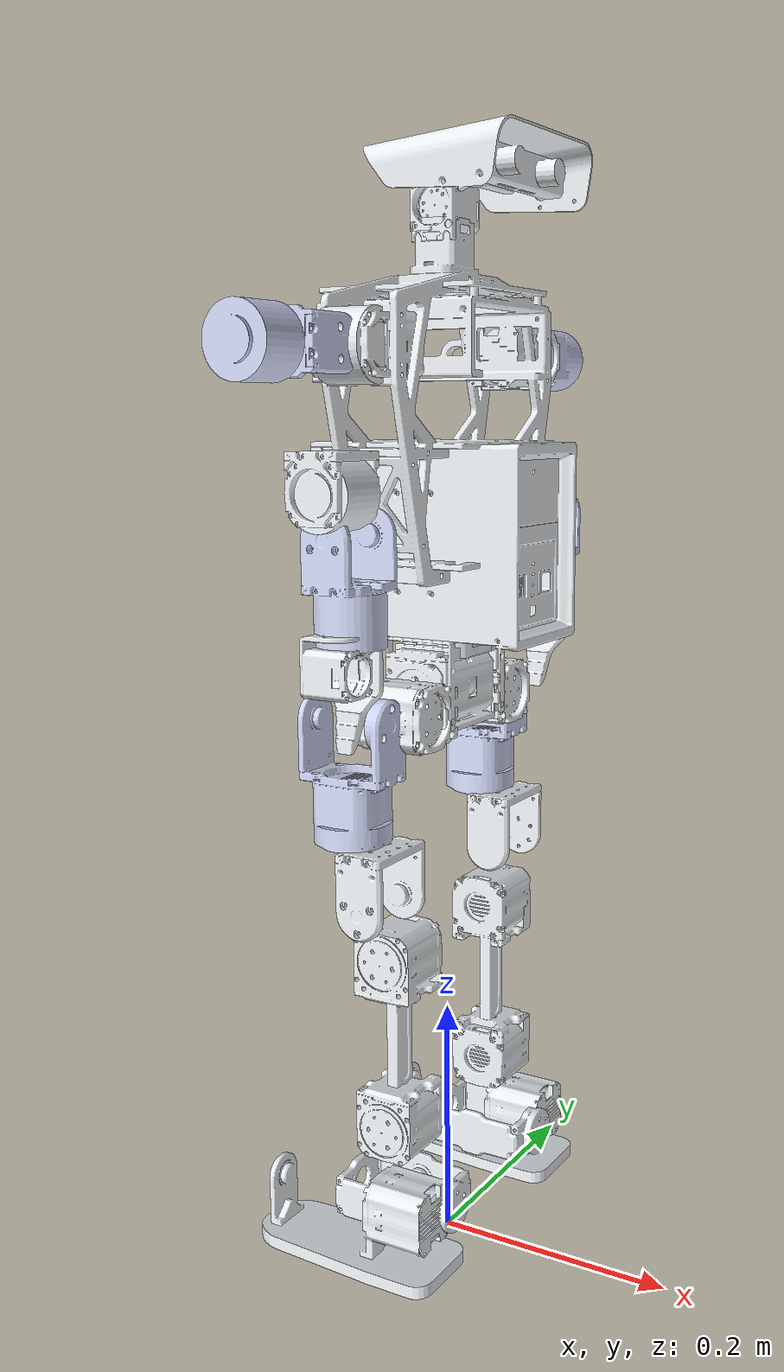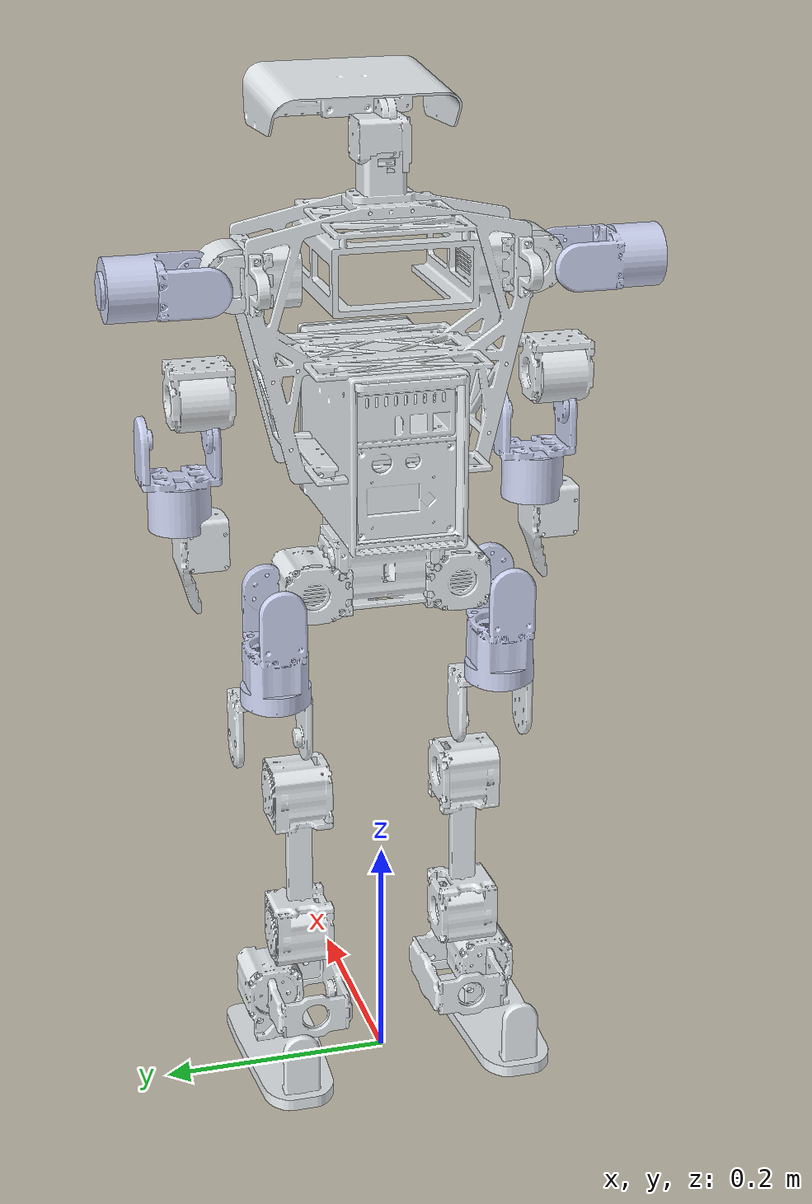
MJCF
<mujoco model="hi_25dof">
  <compiler angle="radian" meshdir="../meshes/"/>

   <statistic center="0 0 0.1" extent="0.8"/>

  <default>
    <joint damping="0.001" armature="0.01" frictionloss="0.1"/>
      <default class="collision">
       <geom group="3"/>
      </default>
  </default>

  <asset>
    <mesh name="base_link" file="base_link.STL"/>
    <mesh name="l_hip_pitch_link" file="l_hip_pitch_link.STL"/>
    <mesh name="l_hip_roll_link" file="l_hip_roll_link.STL"/>
    <mesh name="l_hip_thigh_link" file="l_hip_thigh_link.STL"/>
    <mesh name="l_hip_calf_link" file="l_hip_calf_link.STL"/>
    <mesh name="l_ankle_pitch_link" file="l_ankle_pitch_link.STL"/>
    <mesh name="l_ankle_roll_link" file="l_ankle_roll_link.STL"/>
    <mesh name="ankle_roll_simplify" file="ankle_roll_simplify.STL" scale="0.001 0.001 0.001"/>
    <mesh name="r_hip_pitch_link" file="r_hip_pitch_link.STL"/>
    <mesh name="r_hip_roll_link" file="r_hip_roll_link.STL"/>
    <mesh name="r_hip_thigh_link" file="r_hip_thigh_link.STL"/>
    <mesh name="r_hip_calf_link" file="r_hip_calf_link.STL"/>
    <mesh name="r_ankle_pitch_link" file="r_ankle_pitch_link.STL"/>
    <mesh name="r_ankle_roll_link" file="r_ankle_roll_link.STL"/>
    <mesh name="waist_yaw_link" file="waist_yaw_link.STL"/>
    <mesh name="l_shoulder_pitch_link" file="l_shoulder_pitch_link.STL"/>
    <mesh name="l_shoulder_roll_link" file="l_shoulder_roll_link.STL"/>
    <mesh name="l_upper_arm_link" file="l_upper_arm_link.STL"/>
    <mesh name="l_elbow_link" file="l_elbow_link.STL"/>
    <mesh name="l_wrist_link" file="l_wrist_link.STL"/>
    <mesh name="r_shoulder_pitch_link" file="r_shoulder_pitch_link.STL"/>
    <mesh name="r_shoulder_roll_link" file="r_shoulder_roll_link.STL"/>
    <mesh name="r_upper_arm_link" file="r_upper_arm_link.STL"/>
    <mesh name="r_elbow_link" file="r_elbow_link.STL"/>
    <mesh name="r_wrist_link" file="r_wrist_link.STL"/>
    <mesh name="head_yaw_link" file="head_yaw_link.STL"/>
    <mesh name="head_pitch_link" file="head_pitch_link.STL"/>

  </asset>

 <worldbody>
    <body name="base_link" pos="0 0 0.5">
      <site name="imu" size="0.01" pos="-0.0 -0.0 0.0" />
      <inertial pos="0 0 -0.0394294" quat="0.707104 0.707104 -0.00191349 -0.00191349" mass="1.42581" diaginertia="0.00205355 0.0018257 0.000501455"/>
      <joint name="floating_base_joint" type="free" limited="false" actuatorfrclimited="false"/>
      <geom type="mesh" contype="0" conaffinity="0" group="1" density="0" rgba="0.89804 0.91765 0.92941 1" mesh="base_link"/>
      <geom size="0.025 0.05 0.0325" pos="0 0 -0.04" type="box" rgba="0.89804 0.91765 0.92941 1" class="collision"/>
      <body name="l_hip_pitch_link" pos="0 0.0295 -0.04">
        <inertial pos="0.0003884 0.067835 8.28e-05" quat="0.556493 0.438278 -0.560847 0.428578" mass="0.66505" diaginertia="0.000223908 0.000192604 0.000189288"/>
        <joint name="l_hip_pitch_joint" pos="0 0 0" axis="0 1 0" range="-3.0369 3.0369" actuatorfrcrange="-32.4 32.4"/>
        <geom type="mesh" contype="0" conaffinity="0" group="1" density="0" rgba="0.89804 0.91765 0.92941 1" mesh="l_hip_pitch_link"/>
        <geom size="0.03 0.035 0.03" pos="0 0.065 0" type="box" rgba="0.89804 0.91765 0.92941 1" class="collision"/>
        <body name="l_hip_roll_link" pos="0 0.07 0">
          <inertial pos="0.0009598 0.0001312 -0.081116" quat="0.70836 0.0236484 0.0227625 0.705088" mass="0.78331" diaginertia="0.00146241 0.00126332 0.000491778"/>
          <joint name="l_hip_roll_joint" pos="0 0 0" axis="1 0 0" range="-0.45379 2.618" actuatorfrcrange="-32.4 32.4"/>
          <geom type="mesh" contype="0" conaffinity="0" group="1" density="0" rgba="0.79216 0.81961 0.93333 1" mesh="l_hip_roll_link"/>
          <geom size="0.03 0.035 0.03" pos="0 0 -0.09" type="box" rgba="0.79216 0.81961 0.93333 1" class="collision"/>
          <body name="l_hip_thigh_link" pos="0 0 -0.095">
            <inertial pos="0 -0.00080909 -0.059296" quat="0.588254 0.808676 0 0" mass="0.24756" diaginertia="0.0003962 0.000271392 0.000245108"/>
            <joint name="l_hip_thigh_joint" pos="0 0 0" axis="0 0 1" range="-0.7854 0.7854" actuatorfrcrange="-32.4 32.4"/>
            <geom type="mesh" contype="0" conaffinity="0" group="1" density="0" rgba="0.89804 0.91765 0.92941 1" mesh="l_hip_thigh_link"/>
            <geom size="0.005 0.005 0.005" pos="0 0 -0.005" type="box" rgba="0.89804 0.91765 0.92941 1" class="collision"/>
            <body name="l_hip_calf_link" pos="0 0.00375 -0.097">
              <inertial pos="0.0010123 -0.0024674 -0.064494" quat="0.749749 -0.0135581 0.00418962 0.66157" mass="1.6427" diaginertia="0.00606559 0.00600124 0.000543567"/>
              <joint name="l_hip_calf_joint" pos="0 0 0" axis="0 1 0" range="-1.5708 2.0944" actuatorfrcrange="-32.4 32.4"/>
              <geom type="mesh" contype="0" conaffinity="0" group="1" density="0" rgba="0.89804 0.91765 0.92941 1" mesh="l_hip_calf_link"/>
              <geom size="0.03 0.03 0.105" pos="0 0 -0.06" type="box" rgba="0.89804 0.91765 0.92941 1" class="collision"/>
              <body name="l_ankle_pitch_link" pos="0 -0.00375 -0.19945">
                <inertial pos="0 0 0" quat="0.5 0.5 -0.5 0.5" mass="0.056538" diaginertia="6.3e-06 4.9e-06 4.7e-06"/>
                <joint name="l_ankle_pitch_joint" pos="0 0 0" axis="0 1 0" range="-0.90757 0.7854" actuatorfrcrange="-14.4 14.4"/>
                <geom type="mesh" contype="0" conaffinity="0" group="1" density="0" rgba="0.89804 0.91765 0.92941 1" mesh="l_ankle_pitch_link"/>
                <geom size="0.005 0.005 0.005" type="box" rgba="0.89804 0.91765 0.92941 1" class="collision"/>
                <body name="l_ankle_roll_link">
                  <inertial pos="0.017291 0.00079987 -0.030752" quat="-0.0717589 0.724448 -0.0777767 0.681158" mass="0.59911" diaginertia="0.00144003 0.00137984 0.000239531"/>
                  <joint name="l_ankle_roll_joint" pos="0 0 0" axis="1 0 0" range="-0.37525 0.37525" actuatorfrcrange="-14.4 14.4"/>
                  <geom type="mesh" contype="0" conaffinity="0" group="1" density="0" rgba="0.89804 0.91765 0.92941 1" mesh="l_ankle_roll_link"/>
                  <geom pos="-0.067 0.033 -0.044" quat="0.707388 0 0 -0.706825" type="mesh" rgba="0.89804 0.91765 0.92941 1" mesh="ankle_roll_simplify" class="collision"/>
                </body>
              </body>
            </body>
          </body>
        </body>
      </body>
      <body name="r_hip_pitch_link" pos="0 -0.0295 -0.04">
        <inertial pos="0.0003884 -0.067835 -8.28e-05" quat="0.428578 0.560847 -0.438278 0.556493" mass="0.66505" diaginertia="0.000223908 0.000192604 0.000189288"/>
        <joint name="r_hip_pitch_joint" pos="0 0 0" axis="0 1 0" range="-3.0369 3.0369" actuatorfrcrange="-32.4 32.4"/>
        <geom type="mesh" contype="0" conaffinity="0" group="1" density="0" rgba="0.89804 0.91765 0.92941 1" mesh="r_hip_pitch_link"/>
        <geom size="0.03 0.035 0.03" pos="0 -0.065 0" type="box" rgba="0.89804 0.91765 0.92941 1" class="collision"/>
        <body name="r_hip_roll_link" pos="0 -0.07 0">
          <inertial pos="0.0009598 -0.0001312 -0.081116" quat="0.708631 0.0226903 0.0237133 0.704816" mass="0.78331" diaginertia="0.00146241 0.00126331 0.000491779"/>
          <joint name="r_hip_roll_joint" pos="0 0 0" axis="1 0 0" range="-2.618 0.45379" actuatorfrcrange="-32.4 32.4"/>
          <geom type="mesh" contype="0" conaffinity="0" group="1" density="0" rgba="0.79216 0.81961 0.93333 1" mesh="r_hip_roll_link"/>
          <geom size="0.03 0.035 0.03" pos="0 0 -0.09" type="box" rgba="0.79216 0.81961 0.93333 1" class="collision"/>
          <body name="r_hip_thigh_link" pos="0 0 -0.095">
            <inertial pos="0 0.00080909 -0.059296" quat="0.808676 0.588254 0 0" mass="0.24756" diaginertia="0.0003962 0.000271392 0.000245108"/>
            <joint name="r_hip_thigh_joint" pos="0 0 0" axis="0 0 1" range="-0.7854 0.7854" actuatorfrcrange="-32.4 32.4"/>
            <geom type="mesh" contype="0" conaffinity="0" group="1" density="0" rgba="0.89804 0.91765 0.92941 1" mesh="r_hip_thigh_link"/>
            <geom size="0.005 0.005 0.005" pos="0 0 -0.005" type="box" rgba="0.89804 0.91765 0.92941 1" class="collision"/>
            <body name="r_hip_calf_link" pos="0 -0.00375 -0.097">
              <inertial pos="0.0010123 0.0024674 -0.064494" quat="0.66157 0.00418962 -0.0135581 0.749749" mass="1.6427" diaginertia="0.00606559 0.00600124 0.000543567"/>
              <joint name="r_hip_calf_joint" pos="0 0 0" axis="0 1 0" range="-1.5708 2.0944" actuatorfrcrange="-32.4 32.4"/>
              <geom type="mesh" contype="0" conaffinity="0" group="1" density="0" rgba="0.89804 0.91765 0.92941 1" mesh="r_hip_calf_link"/>
              <geom size="0.03 0.03 0.105" pos="0 0 -0.06" type="box" rgba="0.89804 0.91765 0.92941 1" class="collision"/>
              <body name="r_ankle_pitch_link" pos="0 0.00375 -0.19945">
                <inertial pos="0 0 0" quat="0.5 0.5 -0.5 0.5" mass="0.056538" diaginertia="6.3e-06 4.9e-06 4.7e-06"/>
                <joint name="r_ankle_pitch_joint" pos="0 0 0" axis="0 1 0" range="-0.90757 0.7854" actuatorfrcrange="-14.4 14.4"/>
                <geom type="mesh" contype="0" conaffinity="0" group="1" density="0" rgba="0.89804 0.91765 0.92941 1" mesh="r_ankle_pitch_link"/>
                <geom size="0.005 0.005 0.005" type="box" rgba="0.89804 0.91765 0.92941 1" class="collision"/>
                <body name="r_ankle_roll_link">
                  <inertial pos="0.017291 -0.00079987 -0.030725" quat="0.0717589 0.724448 0.0777767 0.681158" mass="0.59911" diaginertia="0.00144003 0.00137984 0.000239531"/>
                  <joint name="r_ankle_roll_joint" pos="0 0 0" axis="1 0 0" range="-0.37525 0.37525" actuatorfrcrange="-14.4 14.4"/>
                  <geom type="mesh" contype="0" conaffinity="0" group="1" density="0" rgba="0.89804 0.91765 0.92941 1" mesh="r_ankle_roll_link"/>
                  <geom pos="-0.067 0.033 -0.044" quat="0.707388 0 0 -0.706825" type="mesh" rgba="0.89804 0.91765 0.92941 1" mesh="ankle_roll_simplify" class="collision"/>
                </body>
              </body>
            </body>
          </body>
        </body>
      </body>
      <body name="waist_yaw_link" pos="0 0 0.028">
        <inertial pos="-0.003622 5.65e-05 0.142073" quat="0.999954 0.00173664 -0.00941207 -0.000531828" mass="5.19851" diaginertia="0.0536779 0.037744 0.0264721"/>
        <joint name="waist_yaw_joint" pos="0 0 0" axis="0 0 1" range="-3.14 3.14" actuatorfrcrange="-32.4 32.4"/>
        <geom type="mesh" contype="0" conaffinity="0" group="1" density="0" rgba="0.89804 0.91765 0.92941 1" mesh="waist_yaw_link"/>
        <geom size="0.045 0.035 0.025" type="box" rgba="0.89804 0.91765 0.92941 1" class="collision"/>
        <geom size="0.06 0.1 0.105" pos="0 0 0.14" type="box" rgba="0.89804 0.91765 0.92941 1" class="collision"/>
        <body name="l_shoulder_pitch_link" pos="0 0.0958 0.205">
          <inertial pos="0.0013054 0.054423 0.0002632" quat="0.555239 0.442102 -0.565643 0.419884" mass="0.39952" diaginertia="0.000125431 0.00010485 9.80192e-05"/>
          <joint name="l_shoulder_pitch_joint" pos="0 0 0" axis="0 1 0" range="-3.1241 2.9496" actuatorfrcrange="-14.4 14.4"/>
          <geom type="mesh" contype="0" conaffinity="0" group="1" density="0" rgba="0.89804 0.91765 0.92941 1" mesh="l_shoulder_pitch_link"/>
          <geom size="0.025 0.03 0.025" pos="0 0.053 0" type="box" rgba="0.89804 0.91765 0.92941 1" class="collision"/>
          <body name="l_shoulder_roll_link" pos="0 0.05775 0">
            <inertial pos="-0.0015954 -0.0001172 -0.067095" quat="0.701105 -0.0661799 -0.0667196 0.706838" mass="0.45185" diaginertia="0.000421604 0.000367225 0.000166471"/>
            <joint name="l_shoulder_roll_joint" pos="0 0 0" axis="1 0 0" range="-0.17453 3.3161" actuatorfrcrange="-14.4 14.4"/>
            <geom type="mesh" contype="0" conaffinity="0" group="1" density="0" rgba="0.79216 0.81961 0.93333 1" mesh="l_shoulder_roll_link"/>
            <geom size="0.025 0.025 0.025" pos="0 0 -0.07" type="box" rgba="0.79216 0.81961 0.93333 1" class="collision"/>
            <body name="l_upper_arm_link" pos="0 -0.00025 -0.07135">
              <inertial pos="-0.000502 0.001614 -0.057008" quat="0.970534 0.23883 0.0257973 -0.0189506" mass="0.41729" diaginertia="0.000133156 0.000122819 0.000114825"/>
              <joint name="l_upper_arm_joint" pos="0 0 0" axis="0 0 1" range="-3.0543 3.0543" actuatorfrcrange="-14.4 14.4"/>
              <geom type="mesh" contype="0" conaffinity="0" group="1" density="0" rgba="0.89804 0.91765 0.92941 1" mesh="l_upper_arm_link"/>
              <geom size="0.025 0.025 0.025" pos="0 0 -0.06" type="box" rgba="0.89804 0.91765 0.92941 1" class="collision"/>
              <body name="l_elbow_link" pos="0 0 -0.06035">
                <inertial pos="-0.0001603 -0.0025954 -0.055121" quat="0.992957 0.118457 -0.000772141 -0.00210089" mass="0.27631" diaginertia="0.000292802 0.0002374 0.000114498"/>
                <joint name="l_elbow_joint" pos="0 0 0" axis="0 1 0" range="-1.9548 1.9548" actuatorfrcrange="-14.4 14.4"/>
                <geom type="mesh" contype="0" conaffinity="0" group="1" density="0" rgba="0.79216 0.81961 0.93333 1" mesh="l_elbow_link"/>
                <geom size="0.02 0.02 0.02" pos="0 0 -0.065" type="box" rgba="0.79216 0.81961 0.93333 1" class="collision"/>
                <body name="l_wrist_link" pos="0 0 -0.0667">
                  <inertial pos="-0.00025 0 -0.049418" mass="0.056855" diaginertia="2.88e-05 2.88e-05 6.4e-06"/>
                  <joint name="l_wrist_joint" pos="0 0 0" axis="0 0 1" range="-3.14 3.14" actuatorfrcrange="-9 9"/>
                  <geom type="mesh" contype="0" conaffinity="0" group="1" density="0" rgba="0.89804 0.91765 0.92941 1" mesh="l_wrist_link"/>
                  <geom size="0.01 0.01 0.0125" pos="0 0 -0.043" type="box" rgba="0.89804 0.91765 0.92941 1" class="collision"/>
                  <geom name="end_collision" size="0.0175" pos="0 0 -0.072" rgba="0.89804 0.91765 0.92941 1" class="collision"/>
                </body>
              </body>
            </body>
          </body>
        </body>
        <body name="r_shoulder_pitch_link" pos="0 -0.0958 0.205">
          <inertial pos="0.0013054 -0.054423 -0.0002632" quat="0.419884 0.565643 -0.442102 0.555239" mass="0.39952" diaginertia="0.000125431 0.00010485 9.80192e-05"/>
          <joint name="r_shoulder_pitch_joint" pos="0 0 0" axis="0 1 0" range="-3.1241 2.9496" actuatorfrcrange="-14.4 14.4"/>
          <geom type="mesh" contype="0" conaffinity="0" group="1" density="0" rgba="0.89804 0.91765 0.92941 1" mesh="r_shoulder_pitch_link"/>
          <geom size="0.025 0.03 0.025" pos="0 -0.053 0" type="box" rgba="0.89804 0.91765 0.92941 1" class="collision"/>
          <body name="r_shoulder_roll_link" pos="0 -0.05775 0">
            <inertial pos="-0.0015954 0.0001172 -0.067095" quat="0.700453 -0.0670559 -0.0658321 0.707485" mass="0.45185" diaginertia="0.000421606 0.000367223 0.000166471"/>
            <joint name="r_shoulder_roll_joint" pos="0 0 0" axis="1 0 0" range="-3.3161 0.17453" actuatorfrcrange="-14.4 14.4"/>
            <geom type="mesh" contype="0" conaffinity="0" group="1" density="0" rgba="0.79216 0.81961 0.93333 1" mesh="r_shoulder_roll_link"/>
            <geom size="0.025 0.025 0.025" pos="0 0 -0.07" type="box" rgba="0.79216 0.81961 0.93333 1" class="collision"/>
            <body name="r_upper_arm_link" pos="0 0.00025 -0.07135">
              <inertial pos="-0.000502 -0.001614 -0.057008" quat="0.970534 -0.23883 -0.0257973 -0.0189506" mass="0.41729" diaginertia="0.000133156 0.000122819 0.000114825"/>
              <joint name="r_upper_arm_joint" pos="0 0 0" axis="0 0 1" range="-3.0543 3.0543" actuatorfrcrange="-14.4 14.4"/>
              <geom type="mesh" contype="0" conaffinity="0" group="1" density="0" rgba="0.89804 0.91765 0.92941 1" mesh="r_upper_arm_link"/>
              <geom size="0.025 0.025 0.025" pos="0 0 -0.06" type="box" rgba="0.89804 0.91765 0.92941 1" class="collision"/>
              <body name="r_elbow_link" pos="0 0 -0.06035">
                <inertial pos="-0.0001603 0.0025954 -0.055121" quat="0.992957 -0.118457 0.000772141 -0.00210089" mass="0.27631" diaginertia="0.000292802 0.0002374 0.000114498"/>
                <joint name="r_elbow_joint" pos="0 0 0" axis="0 1 0" range="-1.9548 1.9548" actuatorfrcrange="-14.4 14.4"/>
                <geom type="mesh" contype="0" conaffinity="0" group="1" density="0" rgba="0.79216 0.81961 0.93333 1" mesh="r_elbow_link"/>
                <geom size="0.02 0.02 0.02" pos="0 0 -0.065" type="box" rgba="0.79216 0.81961 0.93333 1" class="collision"/>
                <body name="r_wrist_link" pos="0 0 -0.0667">
                  <inertial pos="-0.00025 0 -0.049418" mass="0.056855" diaginertia="2.88e-05 2.88e-05 6.4e-06"/>
                  <joint name="r_wrist_joint" pos="0 0 0" axis="0 0 1" range="-3.14 3.14" actuatorfrcrange="-9 9"/>
                  <geom type="mesh" contype="0" conaffinity="0" group="1" density="0" rgba="0.89804 0.91765 0.92941 1" mesh="r_wrist_link"/>
                  <geom size="0.01 0.01 0.0125" pos="0 0 -0.043" type="box" rgba="0.89804 0.91765 0.92941 1" class="collision"/>
                  <geom size="0.0175" pos="0 0 -0.072" rgba="0.89804 0.91765 0.92941 1" class="collision"/>
                </body>
              </body>
            </body>
          </body>
        </body>
        <body name="head_yaw_link" pos="0 0 0.28405">
          <inertial pos="2.07e-05 0.002718 0.0410253" quat="0.962901 -0.269854 0 0" mass="0.175991" diaginertia="2.05e-05 1.84032e-05 1.20968e-05"/>
          <joint name="head_yaw_joint" pos="0 0 0" axis="0 0 1" range="-2.0944 2.0944" actuatorfrcrange="-1.8 1.8"/>
          <geom type="mesh" contype="0" conaffinity="0" group="1" density="0" rgba="0.89804 0.91765 0.92941 1" mesh="head_yaw_link"/>
          <geom size="0.015 0.015 0.015" pos="0 0 -0.015" type="box" rgba="0.89804 0.91765 0.92941 1" class="collision"/>
          <body name="head_pitch_link" pos="0 0.0015 0.04355">
            <inertial pos="0.0290355 -0.0005714 0.030046" quat="0.514661 0.517059 -0.480097 0.487115" mass="0.326227" diaginertia="0.000936479 0.000727871 0.00031635"/>
            <joint name="head_pitch_joint" pos="0 0 0" axis="0 1 0" range="-1.8326 1.0123" actuatorfrcrange="-1.8 1.8"/>
            <geom type="mesh" contype="0" conaffinity="0" group="1" density="0" rgba="0.89804 0.91765 0.92941 1" mesh="head_pitch_link"/>
            <geom size="0.05 0.075 0.015" pos="0 0 0.025" type="box" rgba="0.89804 0.91765 0.92941 1" class="collision"/>
          </body>
        </body>
      </body>
    </body>
  </worldbody>

 <actuator>

      <motor name="l_hip_pitch_joint" joint="l_hip_pitch_joint" gear="1" ctrllimited="true" ctrlrange="-30 30" />
      <motor name="l_hip_roll_joint" joint="l_hip_roll_joint" gear="1" ctrllimited="true" ctrlrange="-30 30" />
      <motor name="l_hip_thigh_joint" joint="l_hip_thigh_joint" gear="1" ctrllimited="true" ctrlrange="-30 30" />
      <motor name="l_hip_calf_joint" joint="l_hip_calf_joint" gear="1" ctrllimited="true" ctrlrange="-30 30" />
      <motor name="l_ankle_pitch_joint" joint="l_ankle_pitch_joint" gear="1" ctrllimited="true" ctrlrange="-30 30" />
      <motor name="l_ankle_roll_joint" joint="l_ankle_roll_joint" gear="1" ctrllimited="true" ctrlrange="-30 30" />
      <motor name="r_hip_pitch_joint" joint="r_hip_pitch_joint" gear="1" ctrllimited="true" ctrlrange="-30 30" />
      <motor name="r_hip_roll_joint" joint="r_hip_roll_joint" gear="1" ctrllimited="true" ctrlrange="-30 30" />
      <motor name="r_hip_thigh_joint" joint="r_hip_thigh_joint" gear="1" ctrllimited="true" ctrlrange="-30 30" />
      <motor name="r_hip_calf_joint" joint="r_hip_calf_joint" gear="1" ctrllimited="true" ctrlrange="-30 30" />
      <motor name="r_ankle_pitch_joint" joint="r_ankle_pitch_joint" gear="1" ctrllimited="true" ctrlrange="-30 30" />
      <motor name="r_ankle_roll_joint" joint="r_ankle_roll_joint" gear="1" ctrllimited="true" ctrlrange="-30 30" />

      <motor name="waist_yaw_joint" joint="waist_yaw_joint" gear="1" ctrllimited="true" ctrlrange="-30 30" />
      <motor name="l_shoulder_pitch_joint" joint="l_shoulder_pitch_joint" gear="1" ctrllimited="true" ctrlrange="-30 30" />
      <motor name="l_shoulder_roll_joint" joint="l_shoulder_roll_joint" gear="1" ctrllimited="true" ctrlrange="-30 30" />
      <motor name="l_upper_arm_joint" joint="l_upper_arm_joint" gear="1" ctrllimited="true" ctrlrange="-30 30" />
      <motor name="l_elbow_joint" joint="l_elbow_joint" gear="1" ctrllimited="true" ctrlrange="-30 30" />
      <motor name="l_wrist_joint" joint="l_wrist_joint" gear="1" ctrllimited="true" ctrlrange="-30 30" />
      <motor name="r_shoulder_pitch_joint" joint="r_shoulder_pitch_joint" gear="1" ctrllimited="true" ctrlrange="-30 30" />
      <motor name="r_shoulder_roll_joint" joint="r_shoulder_roll_joint" gear="1" ctrllimited="true" ctrlrange="-30 30" />
      <motor name="r_upper_arm_joint" joint="r_upper_arm_joint" gear="1" ctrllimited="true" ctrlrange="-30 30" />
      <motor name="r_elbow_joint" joint="r_elbow_joint" gear="1" ctrllimited="true" ctrlrange="-30 30" />
      <motor name="r_wrist_joint" joint="r_wrist_joint" gear="1" ctrllimited="true" ctrlrange="-30 30" />
      <motor name="head_yaw_joint" joint="head_yaw_joint" gear="1" ctrllimited="true" ctrlrange="-30 30" />
      <motor name="head_pitch_joint" joint="head_pitch_joint" gear="1" ctrllimited="true" ctrlrange="-30 30" />

   </actuator>

    <sensor>
    <!-- position sensors -->
    <actuatorpos name="l_hip_pitch_joint_p" actuator="l_hip_pitch_joint" user="13"/>
    <actuatorpos name="l_hip_roll_joint_p" actuator="l_hip_roll_joint" user="13"/>
    <actuatorpos name="l_hip_thigh_joint_p" actuator="l_hip_thigh_joint" user="13"/>
    <actuatorpos name="l_hip_calf_joint_p" actuator="l_hip_calf_joint" user="13"/>
    <actuatorpos name="l_ankle_pitch_joint_p" actuator="l_ankle_pitch_joint" user="13"/>
    <actuatorpos name="l_ankle_roll_joint_p" actuator="l_ankle_roll_joint" user="13"/>
    <actuatorpos name="r_hip_pitch_joint_p" actuator="r_hip_pitch_joint" user="13"/>
    <actuatorpos name="r_hip_roll_joint_p" actuator="r_hip_roll_joint" user="13"/>
    <actuatorpos name="r_hip_thigh_joint_p" actuator="r_hip_thigh_joint" user="13"/>
    <actuatorpos name="r_hip_calf_joint_p" actuator="r_hip_calf_joint" user="13"/>
    <actuatorpos name="r_ankle_pitch_joint_p" actuator="r_ankle_pitch_joint" user="13"/>
    <actuatorpos name="r_ankle_roll_joint_p" actuator="r_ankle_roll_joint" user="13"/>
    <actuatorpos name="waist_yaw_joint_p" actuator="waist_yaw_joint" user="13"/>
    <actuatorpos name="l_shoulder_pitch_joint_p" actuator="l_shoulder_pitch_joint" user="13"/>
    <actuatorpos name="l_shoulder_roll_joint_p" actuator="l_shoulder_roll_joint" user="13"/>
    <actuatorpos name="l_upper_arm_joint_p" actuator="l_upper_arm_joint" user="13"/>
    <actuatorpos name="l_elbow_joint_p" actuator="l_elbow_joint" user="13"/>
    <actuatorpos name="l_wrist_joint_p" actuator="l_wrist_joint" user="13"/>
    <actuatorpos name="r_shoulder_pitch_joint_p" actuator="r_shoulder_pitch_joint" user="13"/>
    <actuatorpos name="r_shoulder_roll_joint_p" actuator="r_shoulder_roll_joint" user="13"/>
    <actuatorpos name="r_upper_arm_joint_p" actuator="r_upper_arm_joint" user="13"/>
    <actuatorpos name="r_elbow_joint_p" actuator="r_elbow_joint" user="13"/>
    <actuatorpos name="r_wrist_joint_p" actuator="r_wrist_joint" user="13"/>
    <actuatorpos name="head_yaw_joint_p" actuator="head_yaw_joint" user="13"/>
    <actuatorpos name="head_pitch_joint_p" actuator="head_pitch_joint" user="13"/>

    <!-- velocity sensors -->
    <actuatorvel name="l_hip_pitch_joint_v" actuator="l_hip_pitch_joint" user="13" noise="1e-3"/>
    <actuatorvel name="l_hip_roll_joint_v" actuator="l_hip_roll_joint" user="13" noise="1e-3"/>
    <actuatorvel name="l_hip_thigh_joint_v" actuator="l_hip_thigh_joint" user="13" noise="1e-3"/>
    <actuatorvel name="l_hip_calf_joint_v" actuator="l_hip_calf_joint" user="13" noise="1e-3"/>
    <actuatorvel name="l_ankle_pitch_joint_v" actuator="l_ankle_pitch_joint" user="13" noise="1e-3"/>
    <actuatorvel name="l_ankle_roll_joint_v" actuator="l_ankle_roll_joint" user="13" noise="1e-3"/>
    <actuatorvel name="r_hip_pitch_joint_v" actuator="r_hip_pitch_joint" user="13" noise="1e-3"/>
    <actuatorvel name="r_hip_roll_joint_v" actuator="r_hip_roll_joint" user="13" noise="1e-3"/>
    <actuatorvel name="r_hip_thigh_joint_v" actuator="r_hip_thigh_joint" user="13" noise="1e-3"/>
    <actuatorvel name="r_hip_calf_joint_v" actuator="r_hip_calf_joint" user="13" noise="1e-3"/>
    <actuatorvel name="r_ankle_pitch_joint_v" actuator="r_ankle_pitch_joint" user="13" noise="1e-3"/>
    <actuatorvel name="r_ankle_roll_joint_v" actuator="r_ankle_roll_joint" user="13" noise="1e-3"/>
    <actuatorvel name="waist_yaw_joint_v" actuator="waist_yaw_joint" user="13" noise="1e-3"/>
    <actuatorvel name="l_shoulder_pitch_joint_v" actuator="l_shoulder_pitch_joint" user="13" noise="1e-3"/>
    <actuatorvel name="l_shoulder_roll_joint_v" actuator="l_shoulder_roll_joint" user="13" noise="1e-3"/>
    <actuatorvel name="l_upper_arm_joint_v" actuator="l_upper_arm_joint" user="13" noise="1e-3"/>
    <actuatorvel name="l_elbow_joint_v" actuator="l_elbow_joint" user="13" noise="1e-3"/>
    <actuatorvel name="l_wrist_joint_v" actuator="l_wrist_joint" user="13" noise="1e-3"/>
    <actuatorvel name="r_shoulder_pitch_joint_v" actuator="r_shoulder_pitch_joint" user="13" noise="1e-3"/>
    <actuatorvel name="r_shoulder_roll_joint_v" actuator="r_shoulder_roll_joint" user="13" noise="1e-3"/>
    <actuatorvel name="r_upper_arm_joint_v" actuator="r_upper_arm_joint" user="13" noise="1e-3"/>
    <actuatorvel name="r_elbow_joint_v" actuator="r_elbow_joint" user="13" noise="1e-3"/>
    <actuatorvel name="r_wrist_joint_v" actuator="r_wrist_joint" user="13" noise="1e-3"/>
    <actuatorvel name="head_yaw_joint_v" actuator="head_yaw_joint" user="13" noise="1e-3"/>
    <actuatorvel name="head_pitch_joint_v" actuator="head_pitch_joint" user="13" noise="1e-3"/>

      <!-- Force sensors -->
    <actuatorfrc name="l_hip_pitch_joint_f" actuator="l_hip_pitch_joint" user="13" noise="1e-3"/>
    <actuatorfrc name="l_hip_roll_joint_f" actuator="l_hip_roll_joint" user="13" noise="1e-3"/>
    <actuatorfrc name="l_hip_thigh_joint_f" actuator="l_hip_thigh_joint" user="13" noise="1e-3"/>
    <actuatorfrc name="l_hip_calf_joint_f" actuator="l_hip_calf_joint" user="13" noise="1e-3"/>
    <actuatorfrc name="l_ankle_pitch_joint_f" actuator="l_ankle_pitch_joint" user="13" noise="1e-3"/>
    <actuatorfrc name="l_ankle_roll_joint_f" actuator="l_ankle_roll_joint" user="13" noise="1e-3"/>
    <actuatorfrc name="r_hip_pitch_joint_f" actuator="r_hip_pitch_joint" user="13" noise="1e-3"/>
    <actuatorfrc name="r_hip_roll_joint_f" actuator="r_hip_roll_joint" user="13" noise="1e-3"/>
    <actuatorfrc name="r_hip_thigh_joint_f" actuator="r_hip_thigh_joint" user="13" noise="1e-3"/>
    <actuatorfrc name="r_hip_calf_joint_f" actuator="r_hip_calf_joint" user="13" noise="1e-3"/>
    <actuatorfrc name="r_ankle_pitch_joint_f" actuator="r_ankle_pitch_joint" user="13" noise="1e-3"/>
    <actuatorfrc name="r_ankle_roll_joint_f" actuator="r_ankle_roll_joint" user="13" noise="1e-3"/>
    <actuatorfrc name="waist_yaw_joint_f" actuator="waist_yaw_joint" user="13" noise="1e-3"/>
    <actuatorfrc name="l_shoulder_pitch_joint_f" actuator="l_shoulder_pitch_joint" user="13" noise="1e-3"/>
    <actuatorfrc name="l_shoulder_roll_joint_f" actuator="l_shoulder_roll_joint" user="13" noise="1e-3"/>
    <actuatorfrc name="l_upper_arm_joint_f" actuator="l_upper_arm_joint" user="13" noise="1e-3"/>
    <actuatorfrc name="l_elbow_joint_f" actuator="l_elbow_joint" user="13" noise="1e-3"/>
    <actuatorfrc name="l_wrist_joint_f" actuator="l_wrist_joint" user="13" noise="1e-3"/>
    <actuatorfrc name="r_shoulder_pitch_joint_f" actuator="r_shoulder_pitch_joint" user="13" noise="1e-3"/>
    <actuatorfrc name="r_shoulder_roll_joint_f" actuator="r_shoulder_roll_joint" user="13" noise="1e-3"/>
    <actuatorfrc name="r_upper_arm_joint_f" actuator="r_upper_arm_joint" user="13" noise="1e-3"/>
    <actuatorfrc name="r_elbow_joint_f" actuator="r_elbow_joint" user="13" noise="1e-3"/>
    <actuatorfrc name="r_wrist_joint_f" actuator="r_wrist_joint" user="13" noise="1e-3"/>
    <actuatorfrc name="head_yaw_joint_f" actuator="head_yaw_joint" user="13" noise="1e-3"/>
    <actuatorfrc name="head_pitch_joint_f" actuator="head_pitch_joint" user="13" noise="1e-3"/>

    <!-- position and velocity sensors -->
    <framepos name='position' objtype='site' noise='0.001' objname='imu'/>
    <velocimeter name='linear-velocity' site='imu' noise='0.001' cutoff='30'/>
    <!-- imu sensors -->
    <framequat name='orientation' objtype='site' noise='0.001' objname='imu'/>
    <gyro name='angular-velocity' site='imu' noise='0.005' cutoff='34.9'/>
    <accelerometer name='linear-acceleration' site='imu' noise='0.005' cutoff='157'/>
    <magnetometer name='magnetometer' site='imu'/>

    </sensor>

</mujoco>
